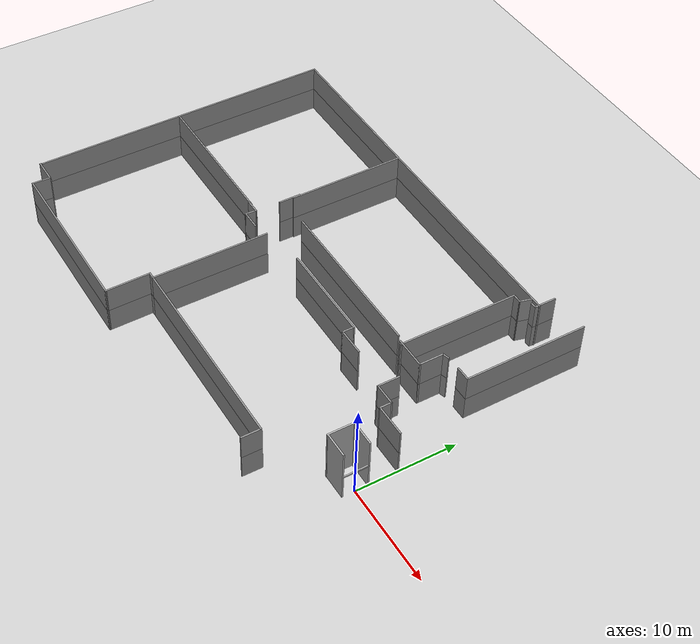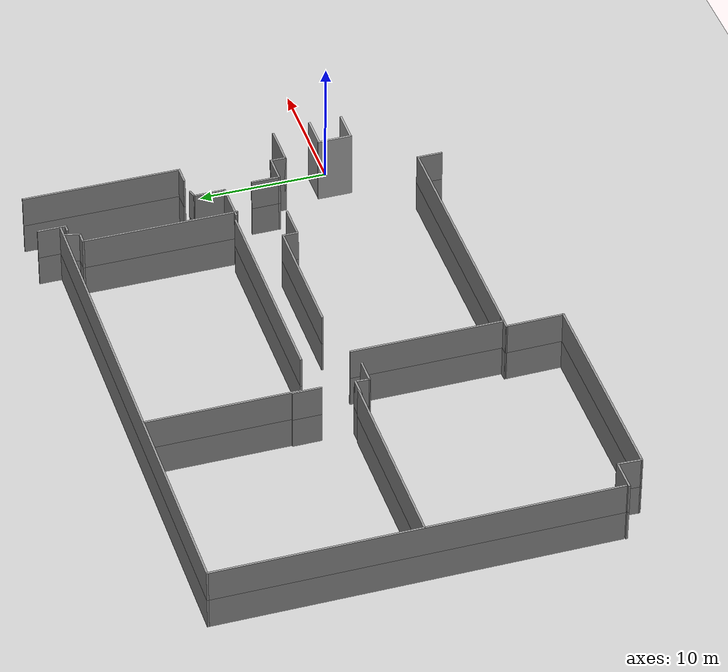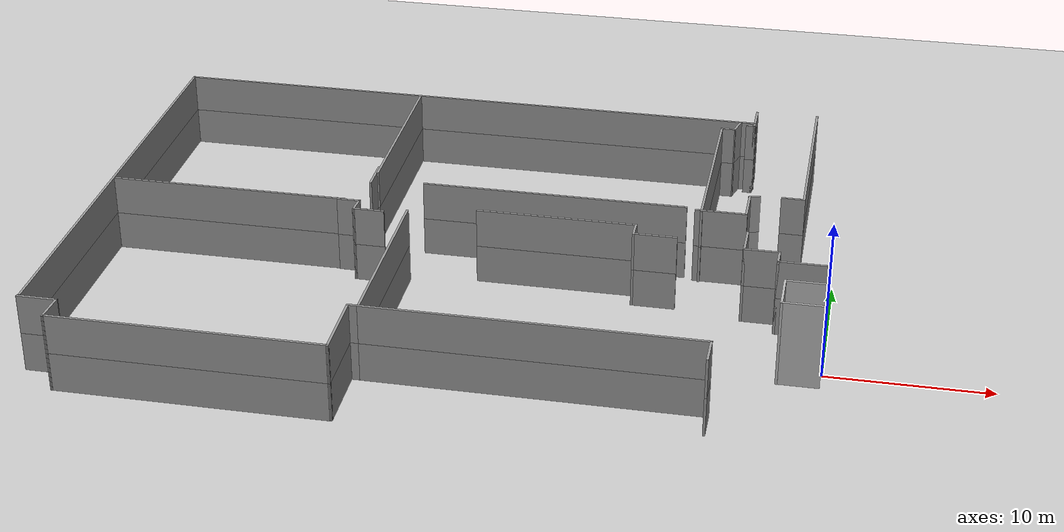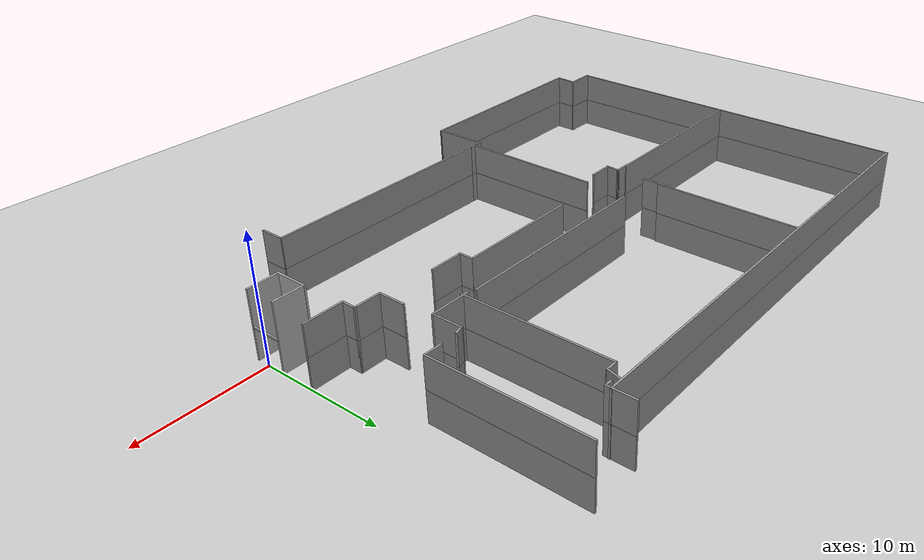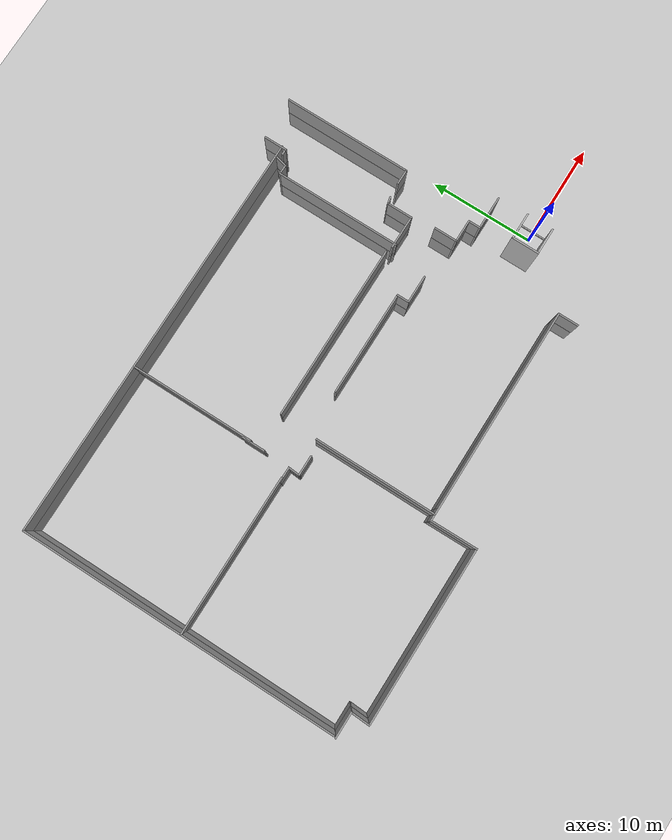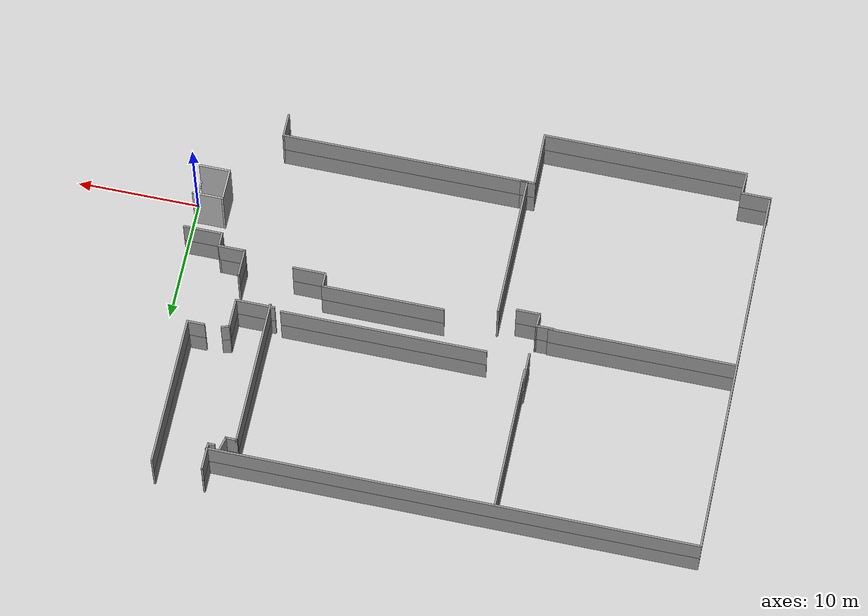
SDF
<sdf version="1.6">
 <world name="default">
  <model name="ground_plane">
   <static>1</static>
   <link name="link">
    <collision name="collision">
     <geometry><plane><normal>0 0 1</normal><size>100 100</size></plane></geometry>
     <surface>
      <contact><collide_bitmask>65535</collide_bitmask></contact>
      <friction><ode><mu>100</mu><mu2>50</mu2></ode></friction>
     </surface>
    </collision>
    <visual name="visual">
     <cast_shadows>0</cast_shadows>
     <geometry><plane><normal>0 0 1</normal><size>100 100</size></plane></geometry>
     <material>
      <script><uri>file://media/materials/scripts/gazebo.material</uri><name>Gazebo/Grey</name></script>
     </material>
    </visual>
   </link>
  </model>
  <model name="bush_refined_2floors">
   <pose>3.42472 8.10808 0 0 -0 0</pose>
   <link name="Wall_1">
    <collision name="Wall_1_Collision">
     <geometry><box><size>0.62833 0.15 2.5</size></box></geometry>
     <pose>0 0 1.25 0 -0 0</pose>
    </collision>
    <visual name="Wall_1_Visual">
     <pose>0 0 1.25 0 -0 0</pose>
     <geometry><box><size>0.62833 0.15 2.5</size></box></geometry>
     <material>
      <script><uri>file://media/materials/scripts/gazebo.material</uri><name>Gazebo/Grey</name></script>
      <ambient>1 1 1 1</ambient>
     </material>
     <meta><layer>0</layer></meta>
    </visual>
    <pose>-9.88269 14.0073 0 0 -0 0</pose>
   </link>
   <link name="Wall_101">
    <collision name="Wall_101_Collision">
     <geometry><box><size>3.25 0.15 2.5</size></box></geometry>
     <pose>0 0 1.25 0 -0 0</pose>
    </collision>
    <visual name="Wall_101_Visual">
     <pose>0 0 1.25 0 -0 0</pose>
     <geometry><box><size>3.25 0.15 2.5</size></box></geometry>
     <material>
      <script><uri>file://media/materials/scripts/gazebo.material</uri><name>Gazebo/Grey</name></script>
      <ambient>1 1 1 1</ambient>
     </material>
     <meta><layer>0</layer></meta>
    </visual>
    <pose>-10.5418 1.53292 0 0 -0 0</pose>
   </link>
   <link name="Wall_1014">
    <collision name="Wall_1014_Collision">
     <geometry><box><size>3.25 0.15 2.5</size></box></geometry>
     <pose>0 0 1.25 0 -0 0</pose>
    </collision>
    <visual name="Wall_1014_Visual">
     <pose>0 0 1.25 0 -0 0</pose>
     <geometry><box><size>3.25 0.15 2.5</size></box></geometry>
     <material>
      <script><uri>file://media/materials/scripts/gazebo.material</uri><name>Gazebo/Grey</name></script>
      <ambient>1 1 1 1</ambient>
     </material>
     <meta><layer>1</layer></meta>
    </visual>
    <pose>-5.03672 -3.92398 2.5 0 -0 3.14159</pose>
   </link>
   <link name="Wall_1015">
    <collision name="Wall_1015_Collision">
     <geometry><box><size>1.25 0.15 2.5</size></box></geometry>
     <pose>0 0 1.25 0 -0 0</pose>
    </collision>
    <visual name="Wall_1015_Visual">
     <pose>0 0 1.25 0 -0 0</pose>
     <geometry><box><size>1.25 0.15 2.5</size></box></geometry>
     <material>
      <script><uri>file://media/materials/scripts/gazebo.material</uri><name>Gazebo/Grey</name></script>
      <ambient>1 1 1 1</ambient>
     </material>
     <meta><layer>1</layer></meta>
    </visual>
    <pose>-6.58672 -3.37398 2.5 0 -0 1.5708</pose>
   </link>
   <link name="Wall_1016">
    <collision name="Wall_1016_Collision">
     <geometry><box><size>2.25 0.15 2.5</size></box></geometry>
     <pose>0 0 1.25 0 -0 0</pose>
    </collision>
    <visual name="Wall_1016_Visual">
     <pose>0 0 1.25 0 -0 0</pose>
     <geometry><box><size>2.25 0.15 2.5</size></box></geometry>
     <material>
      <script><uri>file://media/materials/scripts/gazebo.material</uri><name>Gazebo/Grey</name></script>
      <ambient>1 1 1 1</ambient>
     </material>
     <meta><layer>1</layer></meta>
    </visual>
    <pose>-7.63672 -2.82398 2.5 0 -0 3.14159</pose>
   </link>
   <link name="Wall_1017">
    <collision name="Wall_1017_Collision">
     <geometry><box><size>2.25 0.15 2.5</size></box></geometry>
     <pose>0 0 1.25 0 -0 0</pose>
    </collision>
    <visual name="Wall_1017_Visual">
     <pose>0 0 1.25 0 -0 0</pose>
     <geometry><box><size>2.25 0.15 2.5</size></box></geometry>
     <material>
      <script><uri>file://media/materials/scripts/gazebo.material</uri><name>Gazebo/Grey</name></script>
      <ambient>1 1 1 1</ambient>
     </material>
     <meta><layer>1</layer></meta>
    </visual>
    <pose>-8.68672 -1.77398 2.5 0 -0 1.5708</pose>
   </link>
   <link name="Wall_1018">
    <collision name="Wall_1018_Collision">
     <geometry><box><size>3.25 0.15 2.5</size></box></geometry>
     <pose>0 0 1.25 0 -0 0</pose>
    </collision>
    <visual name="Wall_1018_Visual">
     <pose>0 0 1.25 0 -0 0</pose>
     <geometry><box><size>3.25 0.15 2.5</size></box></geometry>
     <material>
      <script><uri>file://media/materials/scripts/gazebo.material</uri><name>Gazebo/Grey</name></script>
      <ambient>1 1 1 1</ambient>
     </material>
     <meta><layer>1</layer></meta>
    </visual>
    <pose>-10.5418 1.53292 2.5 0 -0 0</pose>
   </link>
   <link name="Wall_1019">
    <collision name="Wall_1019_Collision">
     <geometry><box><size>2.5 0.15 2.5</size></box></geometry>
     <pose>0 0 1.25 0 -0 0</pose>
    </collision>
    <visual name="Wall_1019_Visual">
     <pose>0 0 1.25 0 -0 0</pose>
     <geometry><box><size>2.5 0.15 2.5</size></box></geometry>
     <material>
      <script><uri>file://media/materials/scripts/gazebo.material</uri><name>Gazebo/Grey</name></script>
      <ambient>1 1 1 1</ambient>
     </material>
     <meta><layer>1</layer></meta>
    </visual>
    <pose>-8.99183 2.70792 2.5 0 -0 1.5708</pose>
   </link>
   <link name="Wall_102">
    <collision name="Wall_102_Collision">
     <geometry><box><size>2.5 0.15 2.5</size></box></geometry>
     <pose>0 0 1.25 0 -0 0</pose>
    </collision>
    <visual name="Wall_102_Visual">
     <pose>0 0 1.25 0 -0 0</pose>
     <geometry><box><size>2.5 0.15 2.5</size></box></geometry>
     <material>
      <script><uri>file://media/materials/scripts/gazebo.material</uri><name>Gazebo/Grey</name></script>
      <ambient>1 1 1 1</ambient>
     </material>
     <meta><layer>0</layer></meta>
    </visual>
    <pose>-8.99183 2.70792 0 0 -0 1.5708</pose>
   </link>
   <link name="Wall_1020">
    <collision name="Wall_1020_Collision">
     <geometry><box><size>0.75 0.15 2.5</size></box></geometry>
     <pose>0 0 1.25 0 -0 0</pose>
    </collision>
    <visual name="Wall_1020_Visual">
     <pose>0 0 1.25 0 -0 0</pose>
     <geometry><box><size>0.75 0.15 2.5</size></box></geometry>
     <material>
      <script><uri>file://media/materials/scripts/gazebo.material</uri><name>Gazebo/Grey</name></script>
      <ambient>1 1 1 1</ambient>
     </material>
     <meta><layer>1</layer></meta>
    </visual>
    <pose>-8.70205 3.96057 2.5 0 -0 0.261799</pose>
   </link>
   <link name="Wall_1021">
    <collision name="Wall_1021_Collision">
     <geometry><box><size>1.5 0.15 2.5</size></box></geometry>
     <pose>0 0 1.25 0 -0 0</pose>
    </collision>
    <visual name="Wall_1021_Visual">
     <pose>0 0 1.25 0 -0 0</pose>
     <geometry><box><size>1.5 0.15 2.5</size></box></geometry>
     <material>
      <script><uri>file://media/materials/scripts/gazebo.material</uri><name>Gazebo/Grey</name></script>
      <ambient>1 1 1 1</ambient>
     </material>
     <meta><layer>1</layer></meta>
    </visual>
    <pose>-6.30973 4.12145 2.5 0 -0 0</pose>
   </link>
   <link name="Wall_1022">
    <collision name="Wall_1022_Collision">
     <geometry><box><size>12.25 0.15 2.5</size></box></geometry>
     <pose>0 0 1.25 0 -0 0</pose>
    </collision>
    <visual name="Wall_1022_Visual">
     <pose>0 0 1.25 0 -0 0</pose>
     <geometry><box><size>12.25 0.15 2.5</size></box></geometry>
     <material>
      <script><uri>file://media/materials/scripts/gazebo.material</uri><name>Gazebo/Grey</name></script>
      <ambient>1 1 1 1</ambient>
     </material>
     <meta><layer>1</layer></meta>
    </visual>
    <pose>-5.63473 10.1715 2.5 0 -0 1.5708</pose>
   </link>
   <link name="Wall_1029">
    <collision name="Wall_1029_Collision">
     <geometry><box><size>39.5 0.15 2.5</size></box></geometry>
     <pose>0 0 1.25 0 -0 0</pose>
    </collision>
    <visual name="Wall_1029_Visual">
     <pose>0 0 1.25 0 -0 0</pose>
     <geometry><box><size>39.5 0.15 2.5</size></box></geometry>
     <material>
      <script><uri>file://media/materials/scripts/gazebo.material</uri><name>Gazebo/Grey</name></script>
      <ambient>1 1 1 1</ambient>
     </material>
     <meta><layer>1</layer></meta>
    </visual>
    <pose>-29.268 14.4096 2.5 0 -0 0</pose>
   </link>
   <link name="Wall_103">
    <collision name="Wall_103_Collision">
     <geometry><box><size>0.75 0.15 2.5</size></box></geometry>
     <pose>0 0 1.25 0 -0 0</pose>
    </collision>
    <visual name="Wall_103_Visual">
     <pose>0 0 1.25 0 -0 0</pose>
     <geometry><box><size>0.75 0.15 2.5</size></box></geometry>
     <material>
      <script><uri>file://media/materials/scripts/gazebo.material</uri><name>Gazebo/Grey</name></script>
      <ambient>1 1 1 1</ambient>
     </material>
     <meta><layer>0</layer></meta>
    </visual>
    <pose>-8.70205 3.96057 0 0 -0 0.261799</pose>
   </link>
   <link name="Wall_1030">
    <collision name="Wall_1030_Collision">
     <geometry><box><size>2.25 0.15 2.5</size></box></geometry>
     <pose>0 0 1.25 0 -0 0</pose>
    </collision>
    <visual name="Wall_1030_Visual">
     <pose>0 0 1.25 0 -0 0</pose>
     <geometry><box><size>2.25 0.15 2.5</size></box></geometry>
     <material>
      <script><uri>file://media/materials/scripts/gazebo.material</uri><name>Gazebo/Grey</name></script>
      <ambient>1 1 1 1</ambient>
     </material>
     <meta><layer>1</layer></meta>
    </visual>
    <pose>-32.7323 2.3293 2.5 0 -0 1.5708</pose>
   </link>
   <link name="Wall_1031">
    <collision name="Wall_1031_Collision">
     <geometry><box><size>2.5 0.15 2.5</size></box></geometry>
     <pose>0 0 1.25 0 -0 0</pose>
    </collision>
    <visual name="Wall_1031_Visual">
     <pose>0 0 1.25 0 -0 0</pose>
     <geometry><box><size>2.5 0.15 2.5</size></box></geometry>
     <material>
      <script><uri>file://media/materials/scripts/gazebo.material</uri><name>Gazebo/Grey</name></script>
      <ambient>1 1 1 1</ambient>
     </material>
     <meta><layer>1</layer></meta>
    </visual>
    <pose>-47.8295 -16.1559 2.5 0 -0 0</pose>
   </link>
   <link name="Wall_1032">
    <collision name="Wall_1032_Collision">
     <geometry><box><size>1.83238 0.15 2.5</size></box></geometry>
     <pose>0 0 1.25 0 -0 0</pose>
    </collision>
    <visual name="Wall_1032_Visual">
     <pose>0 0 1.25 0 -0 0</pose>
     <geometry><box><size>1.83238 0.15 2.5</size></box></geometry>
     <material>
      <script><uri>file://media/materials/scripts/gazebo.material</uri><name>Gazebo/Grey</name></script>
      <ambient>1 1 1 1</ambient>
     </material>
     <meta><layer>1</layer></meta>
    </visual>
    <pose>-46.6947 -17.0766 2.5 0 -0 -1.61864</pose>
   </link>
   <link name="Wall_1033">
    <collision name="Wall_1033_Collision">
     <geometry><box><size>16.75 0.15 2.5</size></box></geometry>
     <pose>0 0 1.25 0 -0 0</pose>
    </collision>
    <visual name="Wall_1033_Visual">
     <pose>0 0 1.25 0 -0 0</pose>
     <geometry><box><size>16.75 0.15 2.5</size></box></geometry>
     <material>
      <script><uri>file://media/materials/scripts/gazebo.material</uri><name>Gazebo/Grey</name></script>
      <ambient>1 1 1 1</ambient>
     </material>
     <meta><layer>1</layer></meta>
    </visual>
    <pose>-38.435 -17.9169 2.5 0 -0 0</pose>
   </link>
   <link name="Wall_1034">
    <collision name="Wall_1034_Collision">
     <geometry><box><size>4.52445 0.15 2.5</size></box></geometry>
     <pose>0 0 1.25 0 -0 0</pose>
    </collision>
    <visual name="Wall_1034_Visual">
     <pose>0 0 1.25 0 -0 0</pose>
     <geometry><box><size>4.52445 0.15 2.5</size></box></geometry>
     <material>
      <script><uri>file://media/materials/scripts/gazebo.material</uri><name>Gazebo/Grey</name></script>
      <ambient>1 1 1 1</ambient>
     </material>
     <meta><layer>1</layer></meta>
    </visual>
    <pose>-30.1614 -15.7298 2.5 0 -0 1.58289</pose>
   </link>
   <link name="Wall_1035">
    <collision name="Wall_1035_Collision">
     <geometry><box><size>1.25 0.15 2.5</size></box></geometry>
     <pose>0 0 1.25 0 -0 0</pose>
    </collision>
    <visual name="Wall_1035_Visual">
     <pose>0 0 1.25 0 -0 0</pose>
     <geometry><box><size>1.25 0.15 2.5</size></box></geometry>
     <material>
      <script><uri>file://media/materials/scripts/gazebo.material</uri><name>Gazebo/Grey</name></script>
      <ambient>1 1 1 1</ambient>
     </material>
     <meta><layer>1</layer></meta>
    </visual>
    <pose>-29.6379 -13.5296 2.5 0 -0 0</pose>
   </link>
   <link name="Wall_105">
    <collision name="Wall_105_Collision">
     <geometry><box><size>1.5 0.15 2.5</size></box></geometry>
     <pose>0 0 1.25 0 -0 0</pose>
    </collision>
    <visual name="Wall_105_Visual">
     <pose>0 0 1.25 0 -0 0</pose>
     <geometry><box><size>1.5 0.15 2.5</size></box></geometry>
     <material>
      <script><uri>file://media/materials/scripts/gazebo.material</uri><name>Gazebo/Grey</name></script>
      <ambient>1 1 1 1</ambient>
     </material>
     <meta><layer>0</layer></meta>
    </visual>
    <pose>-6.30973 4.12145 0 0 -0 0</pose>
   </link>
   <link name="Wall_106">
    <collision name="Wall_106_Collision">
     <geometry><box><size>12.25 0.15 2.5</size></box></geometry>
     <pose>0 0 1.25 0 -0 0</pose>
    </collision>
    <visual name="Wall_106_Visual">
     <pose>0 0 1.25 0 -0 0</pose>
     <geometry><box><size>12.25 0.15 2.5</size></box></geometry>
     <material>
      <script><uri>file://media/materials/scripts/gazebo.material</uri><name>Gazebo/Grey</name></script>
      <ambient>1 1 1 1</ambient>
     </material>
     <meta><layer>0</layer></meta>
    </visual>
    <pose>-5.63473 10.1715 0 0 -0 1.5708</pose>
   </link>
   <link name="Wall_117">
    <collision name="Wall_117_Collision">
     <geometry><box><size>39.5 0.15 2.5</size></box></geometry>
     <pose>0 0 1.25 0 -0 0</pose>
    </collision>
    <visual name="Wall_117_Visual">
     <pose>0 0 1.25 0 -0 0</pose>
     <geometry><box><size>39.5 0.15 2.5</size></box></geometry>
     <material>
      <script><uri>file://media/materials/scripts/gazebo.material</uri><name>Gazebo/Grey</name></script>
      <ambient>1 1 1 1</ambient>
     </material>
     <meta><layer>0</layer></meta>
    </visual>
    <pose>-29.268 14.4096 0 0 -0 0</pose>
   </link>
   <link name="Wall_119">
    <collision name="Wall_119_Collision">
     <geometry><box><size>2.25 0.15 2.5</size></box></geometry>
     <pose>0 0 1.25 0 -0 0</pose>
    </collision>
    <visual name="Wall_119_Visual">
     <pose>0 0 1.25 0 -0 0</pose>
     <geometry><box><size>2.25 0.15 2.5</size></box></geometry>
     <material>
      <script><uri>file://media/materials/scripts/gazebo.material</uri><name>Gazebo/Grey</name></script>
      <ambient>1 1 1 1</ambient>
     </material>
     <meta><layer>0</layer></meta>
    </visual>
    <pose>-32.7323 2.3293 0 0 -0 1.5708</pose>
   </link>
   <link name="Wall_121">
    <collision name="Wall_121_Collision">
     <geometry><box><size>2.5 0.15 2.5</size></box></geometry>
     <pose>0 0 1.25 0 -0 0</pose>
    </collision>
    <visual name="Wall_121_Visual">
     <pose>0 0 1.25 0 -0 0</pose>
     <geometry><box><size>2.5 0.15 2.5</size></box></geometry>
     <material>
      <script><uri>file://media/materials/scripts/gazebo.material</uri><name>Gazebo/Grey</name></script>
      <ambient>1 1 1 1</ambient>
     </material>
     <meta><layer>0</layer></meta>
    </visual>
    <pose>-47.8295 -16.1559 0 0 -0 0</pose>
   </link>
   <link name="Wall_122">
    <collision name="Wall_122_Collision">
     <geometry><box><size>1.83238 0.15 2.5</size></box></geometry>
     <pose>0 0 1.25 0 -0 0</pose>
    </collision>
    <visual name="Wall_122_Visual">
     <pose>0 0 1.25 0 -0 0</pose>
     <geometry><box><size>1.83238 0.15 2.5</size></box></geometry>
     <material>
      <script><uri>file://media/materials/scripts/gazebo.material</uri><name>Gazebo/Grey</name></script>
      <ambient>1 1 1 1</ambient>
     </material>
     <meta><layer>0</layer></meta>
    </visual>
    <pose>-46.6947 -17.0766 0 0 -0 -1.61864</pose>
   </link>
   <link name="Wall_123">
    <collision name="Wall_123_Collision">
     <geometry><box><size>16.75 0.15 2.5</size></box></geometry>
     <pose>0 0 1.25 0 -0 0</pose>
    </collision>
    <visual name="Wall_123_Visual">
     <pose>0 0 1.25 0 -0 0</pose>
     <geometry><box><size>16.75 0.15 2.5</size></box></geometry>
     <material>
      <script><uri>file://media/materials/scripts/gazebo.material</uri><name>Gazebo/Grey</name></script>
      <ambient>1 1 1 1</ambient>
     </material>
     <meta><layer>0</layer></meta>
    </visual>
    <pose>-38.435 -17.9169 0 0 -0 0</pose>
   </link>
   <link name="Wall_124">
    <collision name="Wall_124_Collision">
     <geometry><box><size>4.52445 0.15 2.5</size></box></geometry>
     <pose>0 0 1.25 0 -0 0</pose>
    </collision>
    <visual name="Wall_124_Visual">
     <pose>0 0 1.25 0 -0 0</pose>
     <geometry><box><size>4.52445 0.15 2.5</size></box></geometry>
     <material>
      <script><uri>file://media/materials/scripts/gazebo.material</uri><name>Gazebo/Grey</name></script>
      <ambient>1 1 1 1</ambient>
     </material>
     <meta><layer>0</layer></meta>
    </visual>
    <pose>-30.1614 -15.7298 0 0 -0 1.58289</pose>
   </link>
   <link name="Wall_125">
    <collision name="Wall_125_Collision">
     <geometry><box><size>1.25 0.15 2.5</size></box></geometry>
     <pose>0 0 1.25 0 -0 0</pose>
    </collision>
    <visual name="Wall_125_Visual">
     <pose>0 0 1.25 0 -0 0</pose>
     <geometry><box><size>1.25 0.15 2.5</size></box></geometry>
     <material>
      <script><uri>file://media/materials/scripts/gazebo.material</uri><name>Gazebo/Grey</name></script>
      <ambient>1 1 1 1</ambient>
     </material>
     <meta><layer>0</layer></meta>
    </visual>
    <pose>-29.6379 -13.5296 0 0 -0 0</pose>
   </link>
   <link name="Wall_2">
    <collision name="Wall_2_Collision">
     <geometry><box><size>2.25 0.15 2.5</size></box></geometry>
     <pose>0 0 1.25 0 -0 0</pose>
    </collision>
    <visual name="Wall_2_Visual">
     <pose>0 0 1.25 0 -0 0</pose>
     <geometry><box><size>2.25 0.15 2.5</size></box></geometry>
     <material>
      <script><uri>file://media/materials/scripts/gazebo.material</uri><name>Gazebo/Grey</name></script>
      <ambient>1 1 1 1</ambient>
     </material>
     <meta><layer>0</layer></meta>
    </visual>
    <pose>-9.64352 15.0573 0 0 -0 1.5708</pose>
   </link>
   <link name="Wall_28">
    <collision name="Wall_28_Collision">
     <geometry><box><size>15.25 0.15 2.5</size></box></geometry>
     <pose>0 0 1.25 0 -0 0</pose>
    </collision>
    <visual name="Wall_28_Visual">
     <pose>0 0 1.25 0 -0 0</pose>
     <geometry><box><size>15.25 0.15 2.5</size></box></geometry>
     <material>
      <script><uri>file://media/materials/scripts/gazebo.material</uri><name>Gazebo/Grey</name></script>
      <ambient>1 1 1 1</ambient>
     </material>
     <meta><layer>0</layer></meta>
    </visual>
    <pose>-41.3798 -1.19854 0 0 -0 0</pose>
   </link>
   <link name="Wall_33">
    <collision name="Wall_33_Collision">
     <geometry><box><size>30.5 0.15 2.5</size></box></geometry>
     <pose>0 0 1.25 0 -0 0</pose>
    </collision>
    <visual name="Wall_33_Visual">
     <pose>0 0 1.25 0 -0 0</pose>
     <geometry><box><size>30.5 0.15 2.5</size></box></geometry>
     <material>
      <script><uri>file://media/materials/scripts/gazebo.material</uri><name>Gazebo/Grey</name></script>
      <ambient>1 1 1 1</ambient>
     </material>
     <meta><layer>0</layer></meta>
    </visual>
    <pose>-48.943 -0.765412 0 0 -0 -1.5708</pose>
   </link>
   <link name="Wall_36">
    <collision name="Wall_36_Collision">
     <geometry><box><size>1.5 0.15 2.5</size></box></geometry>
     <pose>0 0 1.25 0 -0 0</pose>
    </collision>
    <visual name="Wall_36_Visual">
     <pose>0 0 1.25 0 -0 0</pose>
     <geometry><box><size>1.5 0.15 2.5</size></box></geometry>
     <material>
      <script><uri>file://media/materials/scripts/gazebo.material</uri><name>Gazebo/Grey</name></script>
      <ambient>1 1 1 1</ambient>
     </material>
     <meta><layer>0</layer></meta>
    </visual>
    <pose>-33.4806 -1.25685 0 0 -0 0</pose>
   </link>
   <link name="Wall_37">
    <collision name="Wall_37_Collision">
     <geometry><box><size>1.19418 0.15 2.5</size></box></geometry>
     <pose>0 0 1.25 0 -0 0</pose>
    </collision>
    <visual name="Wall_37_Visual">
     <pose>0 0 1.25 0 -0 0</pose>
     <geometry><box><size>1.19418 0.15 2.5</size></box></geometry>
     <material>
      <script><uri>file://media/materials/scripts/gazebo.material</uri><name>Gazebo/Grey</name></script>
      <ambient>1 1 1 1</ambient>
     </material>
     <meta><layer>0</layer></meta>
    </visual>
    <pose>-32.8416 -1.7777 0 0 -0 -1.63978</pose>
   </link>
   <link name="Wall_39">
    <collision name="Wall_39_Collision">
     <geometry><box><size>11.75 0.15 2.5</size></box></geometry>
     <pose>0 0 1.25 0 -0 0</pose>
    </collision>
    <visual name="Wall_39_Visual">
     <pose>0 0 1.25 0 -0 0</pose>
     <geometry><box><size>11.75 0.15 2.5</size></box></geometry>
     <material>
      <script><uri>file://media/materials/scripts/gazebo.material</uri><name>Gazebo/Grey</name></script>
      <ambient>1 1 1 1</ambient>
     </material>
     <meta><layer>0</layer></meta>
    </visual>
    <pose>-32.6294 8.50369 0 0 -0 -1.5708</pose>
   </link>
   <link name="Wall_41">
    <collision name="Wall_41_Collision">
     <geometry><box><size>16.75 0.15 2.5</size></box></geometry>
     <pose>0 0 1.25 0 -0 0</pose>
    </collision>
    <visual name="Wall_41_Visual">
     <pose>0 0 1.25 0 -0 0</pose>
     <geometry><box><size>16.75 0.15 2.5</size></box></geometry>
     <material>
      <script><uri>file://media/materials/scripts/gazebo.material</uri><name>Gazebo/Grey</name></script>
      <ambient>1 1 1 1</ambient>
     </material>
     <meta><layer>0</layer></meta>
    </visual>
    <pose>-21.0417 1.75845 0 0 -0 0</pose>
   </link>
   <link name="Wall_43">
    <collision name="Wall_43_Collision">
     <geometry><box><size>1.25 0.15 2.5</size></box></geometry>
     <pose>0 0 1.25 0 -0 0</pose>
    </collision>
    <visual name="Wall_43_Visual">
     <pose>0 0 1.25 0 -0 0</pose>
     <geometry><box><size>1.25 0.15 2.5</size></box></geometry>
     <material>
      <script><uri>file://media/materials/scripts/gazebo.material</uri><name>Gazebo/Grey</name></script>
      <ambient>1 1 1 1</ambient>
     </material>
     <meta><layer>0</layer></meta>
    </visual>
    <pose>-10.7501 13.7662 0 0 -0 -1.8326</pose>
   </link>
   <link name="Wall_44">
    <collision name="Wall_44_Collision">
     <geometry><box><size>1 0.15 2.5</size></box></geometry>
     <pose>0 0 1.25 0 -0 0</pose>
    </collision>
    <visual name="Wall_44_Visual">
     <pose>0 0 1.25 0 -0 0</pose>
     <geometry><box><size>1 0.15 2.5</size></box></geometry>
     <material>
      <script><uri>file://media/materials/scripts/gazebo.material</uri><name>Gazebo/Grey</name></script>
      <ambient>1 1 1 1</ambient>
     </material>
     <meta><layer>0</layer></meta>
    </visual>
    <pose>-11.3174 13.2349 0 0 -0 3.14159</pose>
   </link>
   <link name="Wall_45">
    <collision name="Wall_45_Collision">
     <geometry><box><size>12 0.15 2.5</size></box></geometry>
     <pose>0 0 1.25 0 -0 0</pose>
    </collision>
    <visual name="Wall_45_Visual">
     <pose>0 0 1.25 0 -0 0</pose>
     <geometry><box><size>12 0.15 2.5</size></box></geometry>
     <material>
      <script><uri>file://media/materials/scripts/gazebo.material</uri><name>Gazebo/Grey</name></script>
      <ambient>1 1 1 1</ambient>
     </material>
     <meta><layer>0</layer></meta>
    </visual>
    <pose>-11.7424 7.30989 0 0 -0 -1.5708</pose>
   </link>
   <link name="Wall_47">
    <collision name="Wall_47_Collision">
     <geometry><box><size>10 0.15 2.5</size></box></geometry>
     <pose>0 0 1.25 0 -0 0</pose>
    </collision>
    <visual name="Wall_47_Visual">
     <pose>0 0 1.25 0 -0 0</pose>
     <geometry><box><size>10 0.15 2.5</size></box></geometry>
     <material>
      <script><uri>file://media/materials/scripts/gazebo.material</uri><name>Gazebo/Grey</name></script>
      <ambient>1 1 1 1</ambient>
     </material>
     <meta><layer>0</layer></meta>
    </visual>
    <pose>-20.3744 -1.09384 0 0 -0 0</pose>
   </link>
   <link name="Wall_48">
    <collision name="Wall_48_Collision">
     <geometry><box><size>1.25 0.15 2.5</size></box></geometry>
     <pose>0 0 1.25 0 -0 0</pose>
    </collision>
    <visual name="Wall_48_Visual">
     <pose>0 0 1.25 0 -0 0</pose>
     <geometry><box><size>1.25 0.15 2.5</size></box></geometry>
     <material>
      <script><uri>file://media/materials/scripts/gazebo.material</uri><name>Gazebo/Grey</name></script>
      <ambient>1 1 1 1</ambient>
     </material>
     <meta><layer>0</layer></meta>
    </visual>
    <pose>-15.4494 -1.64385 0 0 -0 -1.5708</pose>
   </link>
   <link name="Wall_49">
    <collision name="Wall_49_Collision">
     <geometry><box><size>2.75 0.15 2.5</size></box></geometry>
     <pose>0 0 1.25 0 -0 0</pose>
    </collision>
    <visual name="Wall_49_Visual">
     <pose>0 0 1.25 0 -0 0</pose>
     <geometry><box><size>2.75 0.15 2.5</size></box></geometry>
     <material>
      <script><uri>file://media/materials/scripts/gazebo.material</uri><name>Gazebo/Grey</name></script>
      <ambient>1 1 1 1</ambient>
     </material>
     <meta><layer>0</layer></meta>
    </visual>
    <pose>-14.1494 -2.19385 0 0 -0 0</pose>
   </link>
   <link name="Wall_51">
    <collision name="Wall_51_Collision">
     <geometry><box><size>11.75 0.15 2.5</size></box></geometry>
     <pose>0 0 1.25 0 -0 0</pose>
    </collision>
    <visual name="Wall_51_Visual">
     <pose>0 0 1.25 0 -0 0</pose>
     <geometry><box><size>11.75 0.15 2.5</size></box></geometry>
     <material>
      <script><uri>file://media/materials/scripts/gazebo.material</uri><name>Gazebo/Grey</name></script>
      <ambient>1 1 1 1</ambient>
     </material>
     <meta><layer>0</layer></meta>
    </visual>
    <pose>-29.567 -7.73337 0 0 -0 -1.5708</pose>
   </link>
   <link name="Wall_53">
    <collision name="Wall_53_Collision">
     <geometry><box><size>2 0.15 2.5</size></box></geometry>
     <pose>0 0 1.25 0 -0 0</pose>
    </collision>
    <visual name="Wall_53_Visual">
     <pose>0 0 1.25 0 -0 0</pose>
     <geometry><box><size>2 0.15 2.5</size></box></geometry>
     <material>
      <script><uri>file://media/materials/scripts/gazebo.material</uri><name>Gazebo/Grey</name></script>
      <ambient>1 1 1 1</ambient>
     </material>
     <meta><layer>0</layer></meta>
    </visual>
    <pose>-31.9526 -2.29854 0 0 -0 0</pose>
   </link>
   <link name="Wall_55">
    <collision name="Wall_55_Collision">
     <geometry><box><size>20.25 0.15 2.5</size></box></geometry>
     <pose>0 0 1.25 0 -0 0</pose>
    </collision>
    <visual name="Wall_55_Visual">
     <pose>0 0 1.25 0 -0 0</pose>
     <geometry><box><size>20.25 0.15 2.5</size></box></geometry>
     <material>
      <script><uri>file://media/materials/scripts/gazebo.material</uri><name>Gazebo/Grey</name></script>
      <ambient>1 1 1 1</ambient>
     </material>
     <meta><layer>0</layer></meta>
    </visual>
    <pose>-19.517 -13.5334 0 0 -0 0</pose>
   </link>
   <link name="Wall_56">
    <collision name="Wall_56_Collision">
     <geometry><box><size>2 0.15 2.5</size></box></geometry>
     <pose>0 0 1.25 0 -0 0</pose>
    </collision>
    <visual name="Wall_56_Visual">
     <pose>0 0 1.25 0 -0 0</pose>
     <geometry><box><size>2 0.15 2.5</size></box></geometry>
     <material>
      <script><uri>file://media/materials/scripts/gazebo.material</uri><name>Gazebo/Grey</name></script>
      <ambient>1 1 1 1</ambient>
     </material>
     <meta><layer>0</layer></meta>
    </visual>
    <pose>-9.46697 -14.4584 0 0 -0 -1.5708</pose>
   </link>
   <link name="Wall_948">
    <collision name="Wall_948_Collision">
     <geometry><box><size>0.62833 0.15 2.5</size></box></geometry>
     <pose>0 0 1.25 0 -0 0</pose>
    </collision>
    <visual name="Wall_948_Visual">
     <pose>0 0 1.25 0 -0 0</pose>
     <geometry><box><size>0.62833 0.15 2.5</size></box></geometry>
     <material>
      <script><uri>file://media/materials/scripts/gazebo.material</uri><name>Gazebo/Grey</name></script>
      <ambient>1 1 1 1</ambient>
     </material>
     <meta><layer>1</layer></meta>
    </visual>
    <pose>-9.88269 14.0073 2.5 0 -0 0</pose>
   </link>
   <link name="Wall_949">
    <collision name="Wall_949_Collision">
     <geometry><box><size>2.25 0.15 2.5</size></box></geometry>
     <pose>0 0 1.25 0 -0 0</pose>
    </collision>
    <visual name="Wall_949_Visual">
     <pose>0 0 1.25 0 -0 0</pose>
     <geometry><box><size>2.25 0.15 2.5</size></box></geometry>
     <material>
      <script><uri>file://media/materials/scripts/gazebo.material</uri><name>Gazebo/Grey</name></script>
      <ambient>1 1 1 1</ambient>
     </material>
     <meta><layer>1</layer></meta>
    </visual>
    <pose>-9.64352 15.0573 2.5 0 -0 1.5708</pose>
   </link>
   <link name="Wall_96">
    <collision name="Wall_96_Collision">
     <geometry><box><size>3.25 0.15 2.5</size></box></geometry>
     <pose>0 0 1.25 0 -0 0</pose>
    </collision>
    <visual name="Wall_96_Visual">
     <pose>0 0 1.25 0 -0 0</pose>
     <geometry><box><size>3.25 0.15 2.5</size></box></geometry>
     <material>
      <script><uri>file://media/materials/scripts/gazebo.material</uri><name>Gazebo/Grey</name></script>
      <ambient>1 1 1 1</ambient>
     </material>
     <meta><layer>0</layer></meta>
    </visual>
    <pose>-5.03672 -3.92398 0 0 -0 3.14159</pose>
   </link>
   <link name="Wall_97">
    <collision name="Wall_97_Collision">
     <geometry><box><size>1.25 0.15 2.5</size></box></geometry>
     <pose>0 0 1.25 0 -0 0</pose>
    </collision>
    <visual name="Wall_97_Visual">
     <pose>0 0 1.25 0 -0 0</pose>
     <geometry><box><size>1.25 0.15 2.5</size></box></geometry>
     <material>
      <script><uri>file://media/materials/scripts/gazebo.material</uri><name>Gazebo/Grey</name></script>
      <ambient>1 1 1 1</ambient>
     </material>
     <meta><layer>0</layer></meta>
    </visual>
    <pose>-6.58672 -3.37398 0 0 -0 1.5708</pose>
   </link>
   <link name="Wall_974">
    <collision name="Wall_974_Collision">
     <geometry><box><size>15.25 0.15 2.5</size></box></geometry>
     <pose>0 0 1.25 0 -0 0</pose>
    </collision>
    <visual name="Wall_974_Visual">
     <pose>0 0 1.25 0 -0 0</pose>
     <geometry><box><size>15.25 0.15 2.5</size></box></geometry>
     <material>
      <script><uri>file://media/materials/scripts/gazebo.material</uri><name>Gazebo/Grey</name></script>
      <ambient>1 1 1 1</ambient>
     </material>
     <meta><layer>1</layer></meta>
    </visual>
    <pose>-41.3798 -1.19854 2.5 0 -0 0</pose>
   </link>
   <link name="Wall_975">
    <collision name="Wall_975_Collision">
     <geometry><box><size>30.5 0.15 2.5</size></box></geometry>
     <pose>0 0 1.25 0 -0 0</pose>
    </collision>
    <visual name="Wall_975_Visual">
     <pose>0 0 1.25 0 -0 0</pose>
     <geometry><box><size>30.5 0.15 2.5</size></box></geometry>
     <material>
      <script><uri>file://media/materials/scripts/gazebo.material</uri><name>Gazebo/Grey</name></script>
      <ambient>1 1 1 1</ambient>
     </material>
     <meta><layer>1</layer></meta>
    </visual>
    <pose>-48.943 -0.765411 2.5 0 -0 -1.5708</pose>
   </link>
   <link name="Wall_976">
    <collision name="Wall_976_Collision">
     <geometry><box><size>1.5 0.15 2.5</size></box></geometry>
     <pose>0 0 1.25 0 -0 0</pose>
    </collision>
    <visual name="Wall_976_Visual">
     <pose>0 0 1.25 0 -0 0</pose>
     <geometry><box><size>1.5 0.15 2.5</size></box></geometry>
     <material>
      <script><uri>file://media/materials/scripts/gazebo.material</uri><name>Gazebo/Grey</name></script>
      <ambient>1 1 1 1</ambient>
     </material>
     <meta><layer>1</layer></meta>
    </visual>
    <pose>-33.4806 -1.25685 2.5 0 -0 0</pose>
   </link>
   <link name="Wall_977">
    <collision name="Wall_977_Collision">
     <geometry><box><size>1.19418 0.15 2.5</size></box></geometry>
     <pose>0 0 1.25 0 -0 0</pose>
    </collision>
    <visual name="Wall_977_Visual">
     <pose>0 0 1.25 0 -0 0</pose>
     <geometry><box><size>1.19418 0.15 2.5</size></box></geometry>
     <material>
      <script><uri>file://media/materials/scripts/gazebo.material</uri><name>Gazebo/Grey</name></script>
      <ambient>1 1 1 1</ambient>
     </material>
     <meta><layer>1</layer></meta>
    </visual>
    <pose>-32.8416 -1.7777 2.5 0 -0 -1.63978</pose>
   </link>
   <link name="Wall_978">
    <collision name="Wall_978_Collision">
     <geometry><box><size>11.75 0.15 2.5</size></box></geometry>
     <pose>0 0 1.25 0 -0 0</pose>
    </collision>
    <visual name="Wall_978_Visual">
     <pose>0 0 1.25 0 -0 0</pose>
     <geometry><box><size>11.75 0.15 2.5</size></box></geometry>
     <material>
      <script><uri>file://media/materials/scripts/gazebo.material</uri><name>Gazebo/Grey</name></script>
      <ambient>1 1 1 1</ambient>
     </material>
     <meta><layer>1</layer></meta>
    </visual>
    <pose>-32.6294 8.50369 2.5 0 -0 -1.5708</pose>
   </link>
   <link name="Wall_979">
    <collision name="Wall_979_Collision">
     <geometry><box><size>16.75 0.15 2.5</size></box></geometry>
     <pose>0 0 1.25 0 -0 0</pose>
    </collision>
    <visual name="Wall_979_Visual">
     <pose>0 0 1.25 0 -0 0</pose>
     <geometry><box><size>16.75 0.15 2.5</size></box></geometry>
     <material>
      <script><uri>file://media/materials/scripts/gazebo.material</uri><name>Gazebo/Grey</name></script>
      <ambient>1 1 1 1</ambient>
     </material>
     <meta><layer>1</layer></meta>
    </visual>
    <pose>-21.0417 1.75845 2.5 0 -0 0</pose>
   </link>
   <link name="Wall_98">
    <collision name="Wall_98_Collision">
     <geometry><box><size>2.25 0.15 2.5</size></box></geometry>
     <pose>0 0 1.25 0 -0 0</pose>
    </collision>
    <visual name="Wall_98_Visual">
     <pose>0 0 1.25 0 -0 0</pose>
     <geometry><box><size>2.25 0.15 2.5</size></box></geometry>
     <material>
      <script><uri>file://media/materials/scripts/gazebo.material</uri><name>Gazebo/Grey</name></script>
      <ambient>1 1 1 1</ambient>
     </material>
     <meta><layer>0</layer></meta>
    </visual>
    <pose>-7.63672 -2.82398 0 0 -0 3.14159</pose>
   </link>
   <link name="Wall_980">
    <collision name="Wall_980_Collision">
     <geometry><box><size>1.25 0.15 2.5</size></box></geometry>
     <pose>0 0 1.25 0 -0 0</pose>
    </collision>
    <visual name="Wall_980_Visual">
     <pose>0 0 1.25 0 -0 0</pose>
     <geometry><box><size>1.25 0.15 2.5</size></box></geometry>
     <material>
      <script><uri>file://media/materials/scripts/gazebo.material</uri><name>Gazebo/Grey</name></script>
      <ambient>1 1 1 1</ambient>
     </material>
     <meta><layer>1</layer></meta>
    </visual>
    <pose>-10.7501 13.7662 2.5 0 -0 -1.8326</pose>
   </link>
   <link name="Wall_981">
    <collision name="Wall_981_Collision">
     <geometry><box><size>1 0.15 2.5</size></box></geometry>
     <pose>0 0 1.25 0 -0 0</pose>
    </collision>
    <visual name="Wall_981_Visual">
     <pose>0 0 1.25 0 -0 0</pose>
     <geometry><box><size>1 0.15 2.5</size></box></geometry>
     <material>
      <script><uri>file://media/materials/scripts/gazebo.material</uri><name>Gazebo/Grey</name></script>
      <ambient>1 1 1 1</ambient>
     </material>
     <meta><layer>1</layer></meta>
    </visual>
    <pose>-11.3174 13.2349 2.5 0 -0 3.14159</pose>
   </link>
   <link name="Wall_982">
    <collision name="Wall_982_Collision">
     <geometry><box><size>12 0.15 2.5</size></box></geometry>
     <pose>0 0 1.25 0 -0 0</pose>
    </collision>
    <visual name="Wall_982_Visual">
     <pose>0 0 1.25 0 -0 0</pose>
     <geometry><box><size>12 0.15 2.5</size></box></geometry>
     <material>
      <script><uri>file://media/materials/scripts/gazebo.material</uri><name>Gazebo/Grey</name></script>
      <ambient>1 1 1 1</ambient>
     </material>
     <meta><layer>1</layer></meta>
    </visual>
    <pose>-11.7424 7.30989 2.5 0 -0 -1.5708</pose>
   </link>
   <link name="Wall_983">
    <collision name="Wall_983_Collision">
     <geometry><box><size>10 0.15 2.5</size></box></geometry>
     <pose>0 0 1.25 0 -0 0</pose>
    </collision>
    <visual name="Wall_983_Visual">
     <pose>0 0 1.25 0 -0 0</pose>
     <geometry><box><size>10 0.15 2.5</size></box></geometry>
     <material>
      <script><uri>file://media/materials/scripts/gazebo.material</uri><name>Gazebo/Grey</name></script>
      <ambient>1 1 1 1</ambient>
     </material>
     <meta><layer>1</layer></meta>
    </visual>
    <pose>-20.3744 -1.09384 2.5 0 -0 0</pose>
   </link>
   <link name="Wall_984">
    <collision name="Wall_984_Collision">
     <geometry><box><size>1.25 0.15 2.5</size></box></geometry>
     <pose>0 0 1.25 0 -0 0</pose>
    </collision>
    <visual name="Wall_984_Visual">
     <pose>0 0 1.25 0 -0 0</pose>
     <geometry><box><size>1.25 0.15 2.5</size></box></geometry>
     <material>
      <script><uri>file://media/materials/scripts/gazebo.material</uri><name>Gazebo/Grey</name></script>
      <ambient>1 1 1 1</ambient>
     </material>
     <meta><layer>1</layer></meta>
    </visual>
    <pose>-15.4494 -1.64385 2.5 0 -0 -1.5708</pose>
   </link>
   <link name="Wall_985">
    <collision name="Wall_985_Collision">
     <geometry><box><size>2.75 0.15 2.5</size></box></geometry>
     <pose>0 0 1.25 0 -0 0</pose>
    </collision>
    <visual name="Wall_985_Visual">
     <pose>0 0 1.25 0 -0 0</pose>
     <geometry><box><size>2.75 0.15 2.5</size></box></geometry>
     <material>
      <script><uri>file://media/materials/scripts/gazebo.material</uri><name>Gazebo/Grey</name></script>
      <ambient>1 1 1 1</ambient>
     </material>
     <meta><layer>1</layer></meta>
    </visual>
    <pose>-14.1494 -2.19385 2.5 0 -0 0</pose>
   </link>
   <link name="Wall_986">
    <collision name="Wall_986_Collision">
     <geometry><box><size>11.75 0.15 2.5</size></box></geometry>
     <pose>0 0 1.25 0 -0 0</pose>
    </collision>
    <visual name="Wall_986_Visual">
     <pose>0 0 1.25 0 -0 0</pose>
     <geometry><box><size>11.75 0.15 2.5</size></box></geometry>
     <material>
      <script><uri>file://media/materials/scripts/gazebo.material</uri><name>Gazebo/Grey</name></script>
      <ambient>1 1 1 1</ambient>
     </material>
     <meta><layer>1</layer></meta>
    </visual>
    <pose>-29.567 -7.73337 2.5 0 -0 -1.5708</pose>
   </link>
   <link name="Wall_987">
    <collision name="Wall_987_Collision">
     <geometry><box><size>2 0.15 2.5</size></box></geometry>
     <pose>0 0 1.25 0 -0 0</pose>
    </collision>
    <visual name="Wall_987_Visual">
     <pose>0 0 1.25 0 -0 0</pose>
     <geometry><box><size>2 0.15 2.5</size></box></geometry>
     <material>
      <script><uri>file://media/materials/scripts/gazebo.material</uri><name>Gazebo/Grey</name></script>
      <ambient>1 1 1 1</ambient>
     </material>
     <meta><layer>1</layer></meta>
    </visual>
    <pose>-31.9526 -2.29854 2.5 0 -0 0</pose>
   </link>
   <link name="Wall_988">
    <collision name="Wall_988_Collision">
     <geometry><box><size>20.25 0.15 2.5</size></box></geometry>
     <pose>0 0 1.25 0 -0 0</pose>
    </collision>
    <visual name="Wall_988_Visual">
     <pose>0 0 1.25 0 -0 0</pose>
     <geometry><box><size>20.25 0.15 2.5</size></box></geometry>
     <material>
      <script><uri>file://media/materials/scripts/gazebo.material</uri><name>Gazebo/Grey</name></script>
      <ambient>1 1 1 1</ambient>
     </material>
     <meta><layer>1</layer></meta>
    </visual>
    <pose>-19.517 -13.5334 2.5 0 -0 0</pose>
   </link>
   <link name="Wall_989">
    <collision name="Wall_989_Collision">
     <geometry><box><size>2 0.15 2.5</size></box></geometry>
     <pose>0 0 1.25 0 -0 0</pose>
    </collision>
    <visual name="Wall_989_Visual">
     <pose>0 0 1.25 0 -0 0</pose>
     <geometry><box><size>2 0.15 2.5</size></box></geometry>
     <material>
      <script><uri>file://media/materials/scripts/gazebo.material</uri><name>Gazebo/Grey</name></script>
      <ambient>1 1 1 1</ambient>
     </material>
     <meta><layer>1</layer></meta>
    </visual>
    <pose>-9.46697 -14.4584 2.5 0 -0 -1.5708</pose>
   </link>
   <link name="Wall_99">
    <collision name="Wall_99_Collision">
     <geometry><box><size>2.25 0.15 2.5</size></box></geometry>
     <pose>0 0 1.25 0 -0 0</pose>
    </collision>
    <visual name="Wall_99_Visual">
     <pose>0 0 1.25 0 -0 0</pose>
     <geometry><box><size>2.25 0.15 2.5</size></box></geometry>
     <material>
      <script><uri>file://media/materials/scripts/gazebo.material</uri><name>Gazebo/Grey</name></script>
      <ambient>1 1 1 1</ambient>
     </material>
     <meta><layer>0</layer></meta>
    </visual>
    <pose>-8.68672 -1.77398 0 0 -0 1.5708</pose>
   </link>
   <static>1</static>
  </model>
  <model name="elevator_shaft_0">
   <link name="link">
    <visual name="shaft_wall2_visual">
     <pose>0 -1.25 3 0 -0 0</pose>
     <geometry><box><size>2.5 0.15 6</size></box></geometry>
    </visual>
    <visual name="shaft_wall3_visual">
     <pose>-1.25 0 3 0 -0 0</pose>
     <geometry><box><size>0.15 2.7 6</size></box></geometry>
    </visual>
    <visual name="floor0_visual">
     <pose>1.19 0 0.075 0 -0 0</pose>
     <geometry><box><size>0.12 2.5 0.15</size></box></geometry>
    </visual>
    <visual name="floor1_visual">
     <pose>1.19 0 3.075 0 -0 0</pose>
     <geometry><box><size>0.12 2.5 0.15</size></box></geometry>
    </visual>
    <visual name="shaft_wall1_visual">
     <pose>0 1.25 3 0 -0 0</pose>
     <geometry><box><size>2.5 0.15 6</size></box></geometry>
    </visual>
    <collision name="shaft_wall1_collision">
     <pose>0 1.25 3 0 -0 0</pose>
     <geometry><box><size>2.5 0.15 6</size></box></geometry>
     <surface>
      <friction>
       <ode><mu>1</mu><mu2>1</mu2><fdir1>0 0 0</fdir1><slip1>0</slip1><slip2>0</slip2></ode>
       <torsional>
        <coefficient>1</coefficient>
        <patch_radius>0</patch_radius>
        <surface_radius>0</surface_radius>
        <use_patch_radius>1</use_patch_radius>
        <ode><slip>0</slip></ode>
       </torsional>
      </friction>
      <bounce><restitution_coefficient>0</restitution_coefficient><threshold>1e+06</threshold></bounce>
      <contact>
       <collide_without_contact>0</collide_without_contact>
       <collide_without_contact_bitmask>1</collide_without_contact_bitmask>
       <collide_bitmask>1</collide_bitmask>
       <ode>
        <soft_cfm>0</soft_cfm>
        <soft_erp>0.2</soft_erp>
        <kp>1e+13</kp>
        <kd>1</kd>
        <max_vel>0.01</max_vel>
        <min_depth>0</min_depth>
       </ode>
       <bullet>
        <split_impulse>1</split_impulse>
        <split_impulse_penetration_threshold>-0.01</split_impulse_penetration_threshold>
        <soft_cfm>0</soft_cfm>
        <soft_erp>0.2</soft_erp>
        <kp>1e+13</kp>
        <kd>1</kd>
       </bullet>
      </contact>
     </surface>
    </collision>
    <collision name="shaft_wall2_collision">
     <pose>0 -1.25 3 0 -0 0</pose>
     <geometry><box><size>2.5 0.15 6</size></box></geometry>
     <surface>
      <friction>
       <ode><mu>1</mu><mu2>1</mu2><fdir1>0 0 0</fdir1><slip1>0</slip1><slip2>0</slip2></ode>
       <torsional>
        <coefficient>1</coefficient>
        <patch_radius>0</patch_radius>
        <surface_radius>0</surface_radius>
        <use_patch_radius>1</use_patch_radius>
        <ode><slip>0</slip></ode>
       </torsional>
      </friction>
      <bounce><restitution_coefficient>0</restitution_coefficient><threshold>1e+06</threshold></bounce>
      <contact>
       <collide_without_contact>0</collide_without_contact>
       <collide_without_contact_bitmask>1</collide_without_contact_bitmask>
       <collide_bitmask>1</collide_bitmask>
       <ode>
        <soft_cfm>0</soft_cfm>
        <soft_erp>0.2</soft_erp>
        <kp>1e+13</kp>
        <kd>1</kd>
        <max_vel>0.01</max_vel>
        <min_depth>0</min_depth>
       </ode>
       <bullet>
        <split_impulse>1</split_impulse>
        <split_impulse_penetration_threshold>-0.01</split_impulse_penetration_threshold>
        <soft_cfm>0</soft_cfm>
        <soft_erp>0.2</soft_erp>
        <kp>1e+13</kp>
        <kd>1</kd>
       </bullet>
      </contact>
     </surface>
    </collision>
    <collision name="shaft_wall3_collision">
     <pose>-1.25 0 3 0 -0 0</pose>
     <geometry><box><size>0.15 2.7 6</size></box></geometry>
     <surface>
      <friction>
       <ode><mu>1</mu><mu2>1</mu2><fdir1>0 0 0</fdir1><slip1>0</slip1><slip2>0</slip2></ode>
       <torsional>
        <coefficient>1</coefficient>
        <patch_radius>0</patch_radius>
        <surface_radius>0</surface_radius>
        <use_patch_radius>1</use_patch_radius>
        <ode><slip>0</slip></ode>
       </torsional>
      </friction>
      <bounce><restitution_coefficient>0</restitution_coefficient><threshold>1e+06</threshold></bounce>
      <contact>
       <collide_without_contact>0</collide_without_contact>
       <collide_without_contact_bitmask>1</collide_without_contact_bitmask>
       <collide_bitmask>1</collide_bitmask>
       <ode>
        <soft_cfm>0</soft_cfm>
        <soft_erp>0.2</soft_erp>
        <kp>1e+13</kp>
        <kd>1</kd>
        <max_vel>0.01</max_vel>
        <min_depth>0</min_depth>
       </ode>
       <bullet>
        <split_impulse>1</split_impulse>
        <split_impulse_penetration_threshold>-0.01</split_impulse_penetration_threshold>
        <soft_cfm>0</soft_cfm>
        <soft_erp>0.2</soft_erp>
        <kp>1e+13</kp>
        <kd>1</kd>
       </bullet>
      </contact>
     </surface>
    </collision>
    <collision name="floor0_collision">
     <pose>1.19 0 0.075 0 -0 0</pose>
     <geometry><box><size>0.12 2.5 0.15</size></box></geometry>
     <surface>
      <friction>
       <ode><mu>1</mu><mu2>1</mu2><fdir1>0 0 0</fdir1><slip1>0</slip1><slip2>0</slip2></ode>
       <torsional>
        <coefficient>1</coefficient>
        <patch_radius>0</patch_radius>
        <surface_radius>0</surface_radius>
        <use_patch_radius>1</use_patch_radius>
        <ode><slip>0</slip></ode>
       </torsional>
      </friction>
      <bounce><restitution_coefficient>0</restitution_coefficient><threshold>1e+06</threshold></bounce>
      <contact>
       <collide_without_contact>0</collide_without_contact>
       <collide_without_contact_bitmask>1</collide_without_contact_bitmask>
       <collide_bitmask>1</collide_bitmask>
       <ode>
        <soft_cfm>0</soft_cfm>
        <soft_erp>0.2</soft_erp>
        <kp>1e+13</kp>
        <kd>1</kd>
        <max_vel>0.01</max_vel>
        <min_depth>0</min_depth>
       </ode>
       <bullet>
        <split_impulse>1</split_impulse>
        <split_impulse_penetration_threshold>-0.01</split_impulse_penetration_threshold>
        <soft_cfm>0</soft_cfm>
        <soft_erp>0.2</soft_erp>
        <kp>1e+13</kp>
        <kd>1</kd>
       </bullet>
      </contact>
     </surface>
    </collision>
    <collision name="floor1_collision">
     <pose>1.19 0 3.075 0 -0 0</pose>
     <geometry><box><size>0.12 2.5 0.15</size></box></geometry>
     <surface>
      <friction>
       <ode><mu>1</mu><mu2>1</mu2><fdir1>0 0 0</fdir1><slip1>0</slip1><slip2>0</slip2></ode>
       <torsional>
        <coefficient>1</coefficient>
        <patch_radius>0</patch_radius>
        <surface_radius>0</surface_radius>
        <use_patch_radius>1</use_patch_radius>
        <ode><slip>0</slip></ode>
       </torsional>
      </friction>
      <bounce><restitution_coefficient>0</restitution_coefficient><threshold>1e+06</threshold></bounce>
      <contact>
       <collide_without_contact>0</collide_without_contact>
       <collide_without_contact_bitmask>1</collide_without_contact_bitmask>
       <collide_bitmask>1</collide_bitmask>
       <ode>
        <soft_cfm>0</soft_cfm>
        <soft_erp>0.2</soft_erp>
        <kp>1e+13</kp>
        <kd>1</kd>
        <max_vel>0.01</max_vel>
        <min_depth>0</min_depth>
       </ode>
       <bullet>
        <split_impulse>1</split_impulse>
        <split_impulse_penetration_threshold>-0.01</split_impulse_penetration_threshold>
        <soft_cfm>0</soft_cfm>
        <soft_erp>0.2</soft_erp>
        <kp>1e+13</kp>
        <kd>1</kd>
       </bullet>
      </contact>
     </surface>
    </collision>
   </link>
   <static>1</static>
   <pose>-1.29936 0.071618 -0.57868 0 -0 0</pose>
  </model>
 </world>
</sdf>
